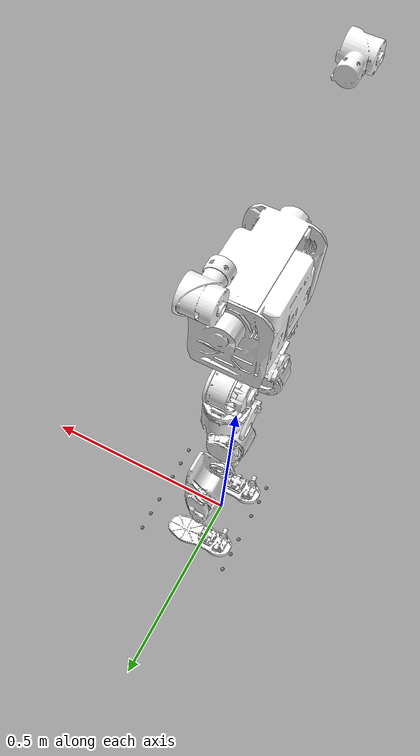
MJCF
<?xml version='1.0' encoding='utf-8'?>
<mujoco model="biped_s32">
  <compiler angle="radian" meshdir="../meshes/" />
  <size njmax="500" nconmax="100" />
  <asset>
    <mesh name="torso" file="torso.STL" />
    <mesh name="l_leg_roll" file="l_leg_roll.STL" />
    <mesh name="l_leg_yaw" file="l_leg_yaw.STL" />
    <mesh name="l_leg_pitch" file="l_leg_pitch.STL" />
    <mesh name="l_knee" file="l_knee.STL" />
    <mesh name="l_foot_pitch" file="l_foot_pitch.STL" />
    <mesh name="l_foot_roll" file="l_foot_roll.STL" />
    <mesh name="r_leg_roll" file="r_leg_roll.STL" />
    <mesh name="r_leg_yaw" file="r_leg_yaw.STL" />
    <mesh name="r_leg_pitch" file="r_leg_pitch.STL" />
    <mesh name="r_knee" file="r_knee.STL" />
    <mesh name="r_foot_pitch" file="r_foot_pitch.STL" />
    <mesh name="r_foot_roll" file="r_foot_roll.STL" />
    <mesh name="l_arm_pitch" file="l_arm_pitch.STL" />
    <mesh name="r_arm_pitch" file="r_arm_pitch.STL" />
  </asset>
  <worldbody>
    <body name="base_link" pos="0 0 0.82">
      <freejoint />
      <site name="imu" pos="0 0 0" />
      <inertial pos="-0.0185005 0.00031952 0.192957" quat="0.998529 4.54328e-05 0.0542216 0.000512508" mass="27.7081" diaginertia="0.938886 0.825905 0.269012" />
      <geom type="mesh" contype="0" conaffinity="0" group="1" density="0" rgba="1 1 1 1" mesh="torso" />
      <body name="leg_l1_link" pos="-0.0024999 0.087 -0.066">
        <inertial pos="-0.00430148 -2.708e-05 -0.00851195" quat="-0.000746146 0.721814 -0.00298446 0.69208" mass="1.71093" diaginertia="0.00371121 0.00277272 0.00205799" />
        <joint name="leg_l1_joint" pos="0 0 0" axis="1 0 0" range="-0.314159 0.663225" actuatorfrcrange="-180 180" damping="0.2" />
        <geom type="mesh" contype="0" conaffinity="0" group="1" density="0" rgba="1 1 1 1" mesh="l_leg_roll" />
        <body name="leg_l2_link">
          <inertial pos="0 -0.00231118 -0.0906254" quat="0.696411 0.717644 -1.38707e-05 1.34603e-05" mass="0.580292" diaginertia="0.00223984 0.00146412 0.00123154" />
          <joint name="leg_l2_joint" pos="0 0 0" axis="0 0 1" range="-0.872665 0.785398" actuatorfrcrange="-100 100" damping="0.2" />
          <geom type="mesh" contype="0" conaffinity="0" group="1" density="0" rgba="1 1 1 1" mesh="l_leg_yaw" />
          <body name="leg_l3_link" pos="0.000500355 -0.001 -0.1287">
            <inertial pos="0.00150537 0.0119961 -0.0841162" quat="0.783717 0.018124 -0.0364866 0.619781" mass="4.50393" diaginertia="0.0396246 0.0389355 0.00980214" />
            <joint name="leg_l3_joint" pos="0 0 0" axis="0 1 0" range="-2.00713 1.5708" actuatorfrcrange="-100 100" damping="0.2" />
            <geom type="mesh" contype="0" conaffinity="0" group="1" density="0" rgba="1 1 1 1" mesh="l_leg_pitch" />
            <body name="leg_l4_link" pos="-6.87185e-05 0 -0.284">
              <inertial pos="0.00696242 5.314e-05 -0.115499" quat="0.99996 -0.00125674 -0.00257659 -0.00848361" mass="1.62777" diaginertia="0.0124395 0.0122957 0.000978994" />
              <joint name="leg_l4_joint" pos="0 0 0" axis="0 1 0" range="0 2.53073" actuatorfrcrange="-180 180" damping="0.2" />
              <geom type="mesh" contype="0" conaffinity="0" group="1" density="0" rgba="1 1 1 1" mesh="l_knee" />
              <body name="leg_l5_link" pos="-0.000431636 0 -0.346">
                <inertial pos="0 0 0" quat="0.5 0.5 -0.5 0.5" mass="0.0719352" diaginertia="1.218e-05 6.92e-06 6.92e-06" />
                <joint name="leg_l5_joint" pos="0 0 0" axis="0 1 0" range="-0.872665 0.349066" actuatorfrcrange="-36 36" damping="0.2" />
                <geom type="mesh" contype="0" conaffinity="0" group="1" density="0" rgba="1 1 1 1" mesh="l_foot_pitch" />
                <body name="leg_l6_link">
                  <inertial pos="0.0373996 -2.2061e-06 -0.0389691" quat="1.14784e-05 0.71913 -5.49597e-06 0.694876" mass="0.501754" diaginertia="0.00177936 0.00163509 0.000396929" />
                  <joint name="leg_l6_joint" pos="0 0 0" axis="1 0 0" range="-0.261799 0.261799" actuatorfrcrange="-36 36" damping="0.2" />
                  <geom type="mesh" contype="0" conaffinity="0" group="1" density="0" rgba="1 1 1 1" mesh="l_foot_roll" />
                  <geom size="0.005" pos="0.17084 0.04773 -0.0595" />
                  <geom size="0.005" pos="-0.073164 0.04773 -0.0595" />
                  <geom size="0.005" pos="0.17084 -0.04773 -0.0595" />
                  <geom size="0.005" pos="-0.073164 -0.04773 -0.0595" />
                  <geom size="0.005" pos="0.17084 0 -0.0595" />
                  <geom size="0.005" pos="-0.073164 0 -0.0595" />
                </body>
              </body>
            </body>
          </body>
        </body>
      </body>
      <body name="leg_r1_link" pos="-0.0024999 -0.087 -0.066">
        <inertial pos="-0.00430146 2.709e-05 -0.00851195" quat="0.000746146 0.721814 0.00298446 0.69208" mass="1.71093" diaginertia="0.00371121 0.00277272 0.00205799" />
        <joint name="leg_r1_joint" pos="0 0 0" axis="1 0 0" range="-0.663225 0.314159" actuatorfrcrange="-180 180" damping="0.2" />
        <geom type="mesh" contype="0" conaffinity="0" group="1" density="0" rgba="1 1 1 1" mesh="r_leg_roll" />
        <body name="leg_r2_link">
          <inertial pos="0 0.00231118 -0.0906254" quat="0.717644 0.696411 1.34603e-05 -1.38707e-05" mass="0.580292" diaginertia="0.00223984 0.00146412 0.00123154" />
          <joint name="leg_r2_joint" pos="0 0 0" axis="0 0 1" range="-0.785398 0.872665" actuatorfrcrange="-100 100" damping="0.2" />
          <geom type="mesh" contype="0" conaffinity="0" group="1" density="0" rgba="1 1 1 1" mesh="r_leg_yaw" />
          <body name="leg_r3_link" pos="-4.88007e-05 0 -0.1287">
            <inertial pos="0.00208315 -0.0119964 -0.0841138" quat="0.619803 -0.0366218 0.0180205 0.783696" mass="4.50386" diaginertia="0.0396237 0.0389344 0.00980197" />
            <joint name="leg_r3_joint" pos="0 0 0" axis="0 1 0" range="-2.00713 1.5708" actuatorfrcrange="-100 100" damping="0.2" />
            <geom type="mesh" contype="0" conaffinity="0" group="1" density="0" rgba="1 1 1 1" mesh="r_leg_pitch" />
            <body name="leg_r4_link" pos="0.000147139 0 -0.284">
              <inertial pos="0.00743231 -5.343e-05 -0.115587" quat="0.999959 0.0012612 -0.00276098 0.00849144" mass="1.62656" diaginertia="0.012413 0.0122692 0.00097885" />
              <joint name="leg_r4_joint" pos="0 0 0" axis="0 1 0" range="0 2.53073" actuatorfrcrange="-180 180" damping="0.2" />
              <geom type="mesh" contype="0" conaffinity="0" group="1" density="0" rgba="1 1 1 1" mesh="r_knee" />
              <body name="leg_r5_link" pos="0.000119806 0 -0.346">
                <inertial pos="0 0 0" quat="0.5 0.5 -0.5 0.5" mass="0.0719352" diaginertia="1.218e-05 6.92e-06 6.92e-06" />
                <joint name="leg_r5_joint" pos="0 0 0" axis="0 1 0" range="-0.872665 0.349066" actuatorfrcrange="-36 36" damping="0.2" />
                <geom type="mesh" contype="0" conaffinity="0" group="1" density="0" rgba="1 1 1 1" mesh="r_foot_pitch" />
                <body name="leg_r6_link">
                  <inertial pos="0.037413 -2.2061e-06 -0.0389563" quat="1.14537e-05 0.719014 -5.52258e-06 0.694996" mass="0.501754" diaginertia="0.00177936 0.00163509 0.000396923" />
                  <joint name="leg_r6_joint" pos="0 0 0" axis="1 0 0" range="-0.261799 0.261799" actuatorfrcrange="-36 36" damping="0.2" />
                  <geom type="mesh" contype="0" conaffinity="0" group="1" density="0" rgba="1 1 1 1" mesh="r_foot_roll" />
                  <geom size="0.005" pos="0.17084 0.04773 -0.0595" />
                  <geom size="0.005" pos="-0.073164 0.04773 -0.0595" />
                  <geom size="0.005" pos="0.17084 -0.04773 -0.0595" />
                  <geom size="0.005" pos="-0.073164 -0.04773 -0.0595" />
                  <geom size="0.005" pos="0.17084 0 -0.0595" />
                  <geom size="0.005" pos="-0.073164 0 -0.0595" />
                </body>
              </body>
            </body>
          </body>
        </body>
      </body>
      <body name="zarm_l1_link" pos="-0.0174999 0.26686 0.4245">
        <inertial pos="0.008 -0.00158 0.0036" quat="0.332594 0.613759 -0.488813 0.523205" mass="1.15" diaginertia="0.000715367 0.000616958 0.000447675" />
        <joint name="zarm_l1_joint" pos="0 0 0" axis="0 1 0" range="-2.61799 0.523599" actuatorfrcrange="-100 100" damping="0.2" />
        <geom type="mesh" contype="0" conaffinity="0" group="1" density="0" rgba="1 1 1 1" mesh="l_arm_pitch" />
      </body>
      <body name="zarm_r1_link" pos="-0.0174999 -0.26686 0.4245">
        <inertial pos="0.008 0.00158 -0.0036" quat="0.523205 0.488813 -0.613759 0.332594" mass="1.15" diaginertia="0.000715367 0.000616958 0.000447675" />
        <joint name="zarm_r1_joint" pos="0 0 0" axis="0 1 0" range="-2.61799 0.523599" actuatorfrcrange="-100 100" damping="0.2" />
        <geom type="mesh" contype="0" conaffinity="0" group="1" density="0" rgba="1 1 1 1" mesh="r_arm_pitch" />
      </body>
    </body>
  </worldbody>
  <actuator>
    <motor gear="1" joint="leg_l1_joint" name="leg_l1_joint_motor" ctrllimited="true" ctrlrange="-180 180" />
    <motor gear="1" joint="leg_l2_joint" name="leg_l2_joint_motor" ctrllimited="true" ctrlrange="-100 100" />
    <motor gear="1" joint="leg_l3_joint" name="leg_l3_joint_motor" ctrllimited="true" ctrlrange="-100 100" />
    <motor gear="1" joint="leg_l4_joint" name="leg_l4_joint_motor" ctrllimited="true" ctrlrange="-180 180" />
    <motor gear="1" joint="leg_l5_joint" name="leg_l5_joint_motor" ctrllimited="true" ctrlrange="-36 36" />
    <motor gear="1" joint="leg_l6_joint" name="leg_l6_joint_motor" ctrllimited="true" ctrlrange="-36 36" />
    <motor gear="1" joint="leg_r1_joint" name="leg_r1_joint_motor" ctrllimited="true" ctrlrange="-180 180" />
    <motor gear="1" joint="leg_r2_joint" name="leg_r2_joint_motor" ctrllimited="true" ctrlrange="-100 100" />
    <motor gear="1" joint="leg_r3_joint" name="leg_r3_joint_motor" ctrllimited="true" ctrlrange="-100 100" />
    <motor gear="1" joint="leg_r4_joint" name="leg_r4_joint_motor" ctrllimited="true" ctrlrange="-180 180" />
    <motor gear="1" joint="leg_r5_joint" name="leg_r5_joint_motor" ctrllimited="true" ctrlrange="-36 36" />
    <motor gear="1" joint="leg_r6_joint" name="leg_r6_joint_motor" ctrllimited="true" ctrlrange="-36 36" />
    <motor gear="1" joint="zarm_l1_joint" name="zarm_l1_joint_motor" ctrllimited="true" ctrlrange="-100 100" />
    <motor gear="1" joint="zarm_r1_joint" name="zarm_r1_joint_motor" ctrllimited="true" ctrlrange="-100 100" />
  </actuator>
  <sensor>
    <accelerometer name="BodyAcc" site="imu" />
    <velocimeter name="BodyVel" site="imu" />
    <gyro name="BodyGyro" site="imu" />
    <framepos name="BodyPos" objtype="site" objname="imu" />
    <framequat name="BodyQuat" objtype="site" objname="imu" />
    <jointpos name="leg_l1_joint_pos" joint="leg_l1_joint" />
    <jointpos name="leg_l2_joint_pos" joint="leg_l2_joint" />
    <jointpos name="leg_l3_joint_pos" joint="leg_l3_joint" />
    <jointpos name="leg_l4_joint_pos" joint="leg_l4_joint" />
    <jointpos name="leg_l5_joint_pos" joint="leg_l5_joint" />
    <jointpos name="leg_l6_joint_pos" joint="leg_l6_joint" />
    <jointpos name="leg_r1_joint_pos" joint="leg_r1_joint" />
    <jointpos name="leg_r2_joint_pos" joint="leg_r2_joint" />
    <jointpos name="leg_r3_joint_pos" joint="leg_r3_joint" />
    <jointpos name="leg_r4_joint_pos" joint="leg_r4_joint" />
    <jointpos name="leg_r5_joint_pos" joint="leg_r5_joint" />
    <jointpos name="leg_r6_joint_pos" joint="leg_r6_joint" />
    <jointpos name="zarm_l1_joint_pos" joint="zarm_l1_joint" />
    <jointpos name="zarm_r1_joint_pos" joint="zarm_r1_joint" />
    <jointvel name="leg_l1_joint_vel" joint="leg_l1_joint" />
    <jointvel name="leg_l2_joint_vel" joint="leg_l2_joint" />
    <jointvel name="leg_l3_joint_vel" joint="leg_l3_joint" />
    <jointvel name="leg_l4_joint_vel" joint="leg_l4_joint" />
    <jointvel name="leg_l5_joint_vel" joint="leg_l5_joint" />
    <jointvel name="leg_l6_joint_vel" joint="leg_l6_joint" />
    <jointvel name="leg_r1_joint_vel" joint="leg_r1_joint" />
    <jointvel name="leg_r2_joint_vel" joint="leg_r2_joint" />
    <jointvel name="leg_r3_joint_vel" joint="leg_r3_joint" />
    <jointvel name="leg_r4_joint_vel" joint="leg_r4_joint" />
    <jointvel name="leg_r5_joint_vel" joint="leg_r5_joint" />
    <jointvel name="leg_r6_joint_vel" joint="leg_r6_joint" />
    <jointvel name="zarm_l1_joint_vel" joint="zarm_l1_joint" />
    <jointvel name="zarm_r1_joint_vel" joint="zarm_r1_joint" />
  </sensor>
</mujoco>
